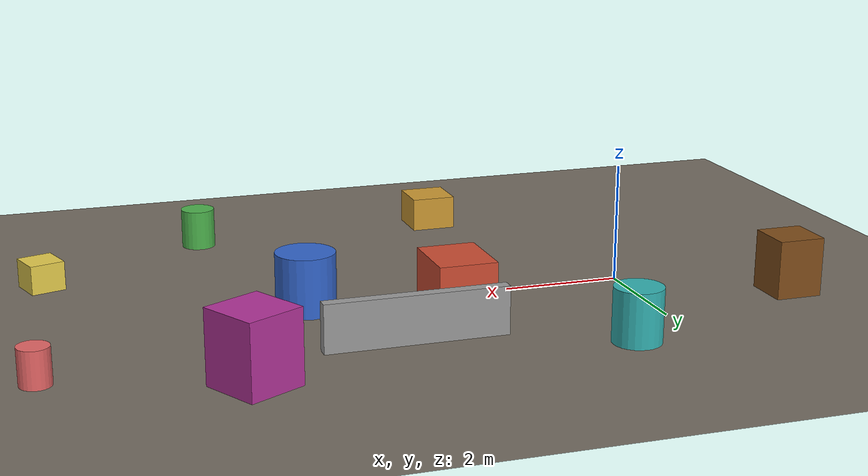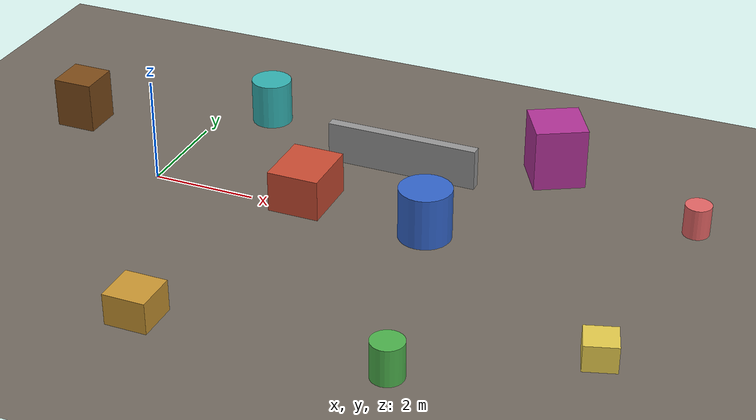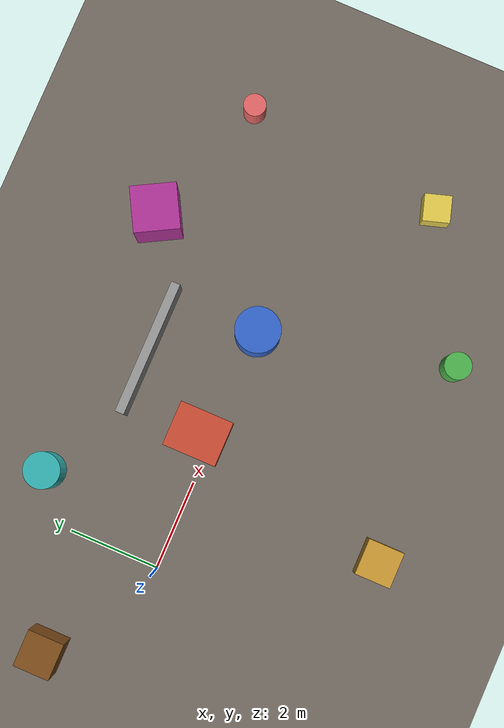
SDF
<?xml version="1.0" ?>
<sdf version="1.9">
  <world name="obstacles">
    <physics name="1ms" type="ignored">
      <max_step_size>0.001</max_step_size>
      <real_time_factor>1.0</real_time_factor>
    </physics>
    <plugin filename="gz-sim-physics-system" name="gz::sim::systems::Physics"/>
    <plugin filename="gz-sim-user-commands-system" name="gz::sim::systems::UserCommands"/>
    <plugin filename="gz-sim-scene-broadcaster-system" name="gz::sim::systems::SceneBroadcaster"/>
    <plugin filename="gz-sim-sensors-system" name="gz::sim::systems::Sensors">
      <render_engine>ogre2</render_engine>
    </plugin>
    <plugin filename="gz-sim-contact-system" name="gz::sim::systems::Contact"/>
    <plugin filename="gz-sim-imu-system" name="gz::sim::systems::Imu"/>

    <gravity>0 0 -9.8</gravity>
    <scene>
      <ambient>0.6 0.6 0.6 1</ambient>
      <background>0.7 0.8 0.9 1</background>
      <shadows>false</shadows>
    </scene>

    <light type="directional" name="sun">
      <cast_shadows>false</cast_shadows>
      <pose>0 0 10 0 0 0</pose>
      <diffuse>0.9 0.9 0.9 1</diffuse>
      <specular>0.2 0.2 0.2 1</specular>
      <direction>-0.5 0.1 -0.9</direction>
    </light>

    <model name="ground_plane">
      <static>true</static>
      <link name="link">
        <collision name="collision">
          <geometry><plane><normal>0 0 1</normal><size>30 30</size></plane></geometry>
          <surface><friction><ode><mu>1.0</mu><mu2>1.0</mu2></ode></friction></surface>
        </collision>
        <visual name="visual">
          <geometry><plane><normal>0 0 1</normal><size>30 30</size></plane></geometry>
          <material><ambient>0.45 0.42 0.38 1</ambient><diffuse>0.45 0.42 0.38 1</diffuse><specular>0.05 0.05 0.05 1</specular></material>
        </visual>
      </link>
    </model>

    <model name="box_line_1">
      <static>true</static>
      <pose>3.0 0.3 0.4 0 0 0.0</pose>
      <link name="link">
        <collision name="collision"><geometry><box><size>1.0 1.2 0.8</size></box></geometry></collision>
        <visual name="visual"><geometry><box><size>1.0 1.2 0.8</size></box></geometry>
          <material><ambient>0.8 0.3 0.2 1</ambient><diffuse>0.8 0.3 0.2 1</diffuse><specular>0.1 0.1 0.1 1</specular></material>
        </visual>
      </link>
    </model>
    <model name="cyl_line_2">
      <static>true</static>
      <pose>5.5 0.0 0.5 0 0 0.0</pose>
      <link name="link">
        <collision name="collision"><geometry><cylinder><radius>0.5</radius><length>1.0</length></cylinder></geometry></collision>
        <visual name="visual"><geometry><cylinder><radius>0.5</radius><length>1.0</length></cylinder></geometry>
          <material><ambient>0.2 0.4 0.8 1</ambient><diffuse>0.2 0.4 0.8 1</diffuse><specular>0.1 0.1 0.1 1</specular></material>
        </visual>
      </link>
    </model>
    <model name="wall_north">
      <static>true</static>
      <pose>4.25 2.0 0.4 0 0 0.0</pose>
      <link name="link">
        <collision name="collision"><geometry><box><size>3.0 0.2 0.8</size></box></geometry></collision>
        <visual name="visual"><geometry><box><size>3.0 0.2 0.8</size></box></geometry>
          <material><ambient>0.6 0.6 0.6 1</ambient><diffuse>0.6 0.6 0.6 1</diffuse><specular>0.1 0.1 0.1 1</specular></material>
        </visual>
      </link>
    </model>
    <model name="box_sw">
      <static>true</static>
      <pose>2.0 -4.3 0.3 0 0 0.0</pose>
      <link name="link">
        <collision name="collision"><geometry><box><size>0.8 0.8 0.6</size></box></geometry></collision>
        <visual name="visual"><geometry><box><size>0.8 0.8 0.6</size></box></geometry>
          <material><ambient>0.8 0.6 0.2 1</ambient><diffuse>0.8 0.6 0.2 1</diffuse><specular>0.1 0.1 0.1 1</specular></material>
        </visual>
      </link>
    </model>
    <model name="cyl_se">
      <static>true</static>
      <pose>6.5 -4.2 0.35 0 0 0.0</pose>
      <link name="link">
        <collision name="collision"><geometry><cylinder><radius>0.3</radius><length>0.7</length></cylinder></geometry></collision>
        <visual name="visual"><geometry><cylinder><radius>0.3</radius><length>0.7</length></cylinder></geometry>
          <material><ambient>0.3 0.7 0.3 1</ambient><diffuse>0.3 0.7 0.3 1</diffuse><specular>0.1 0.1 0.1 1</specular></material>
        </visual>
      </link>
    </model>
    <model name="box_ne">
      <static>true</static>
      <pose>7.0 3.0 0.6 0 0 0.5</pose>
      <link name="link">
        <collision name="collision"><geometry><box><size>1.0 1.0 1.2</size></box></geometry></collision>
        <visual name="visual"><geometry><box><size>1.0 1.0 1.2</size></box></geometry>
          <material><ambient>0.7 0.2 0.6 1</ambient><diffuse>0.7 0.2 0.6 1</diffuse><specular>0.1 0.1 0.1 1</specular></material>
        </visual>
      </link>
    </model>
    <model name="cyl_nw">
      <static>true</static>
      <pose>1.0 3.0 0.45 0 0 0.0</pose>
      <link name="link">
        <collision name="collision"><geometry><cylinder><radius>0.4</radius><length>0.9</length></cylinder></geometry></collision>
        <visual name="visual"><geometry><cylinder><radius>0.4</radius><length>0.9</length></cylinder></geometry>
          <material><ambient>0.2 0.7 0.7 1</ambient><diffuse>0.2 0.7 0.7 1</diffuse><specular>0.1 0.1 0.1 1</specular></material>
        </visual>
      </link>
    </model>
    <model name="box_far_se">
      <static>true</static>
      <pose>9.5 -2.5 0.25 0 0 0.3</pose>
      <link name="link">
        <collision name="collision"><geometry><box><size>0.6 0.6 0.5</size></box></geometry></collision>
        <visual name="visual"><geometry><box><size>0.6 0.6 0.5</size></box></geometry>
          <material><ambient>0.9 0.8 0.3 1</ambient><diffuse>0.9 0.8 0.3 1</diffuse><specular>0.1 0.1 0.1 1</specular></material>
        </visual>
      </link>
    </model>
    <model name="box_behind">
      <static>true</static>
      <pose>-2.5 1.5 0.5 0 0 0.0</pose>
      <link name="link">
        <collision name="collision"><geometry><box><size>0.8 0.8 1.0</size></box></geometry></collision>
        <visual name="visual"><geometry><box><size>0.8 0.8 1.0</size></box></geometry>
          <material><ambient>0.5 0.3 0.1 1</ambient><diffuse>0.5 0.3 0.1 1</diffuse><specular>0.1 0.1 0.1 1</specular></material>
        </visual>
      </link>
    </model>
    <model name="cyl_far_ne">
      <static>true</static>
      <pose>10.0 2.0 0.3 0 0 0.0</pose>
      <link name="link">
        <collision name="collision"><geometry><cylinder><radius>0.25</radius><length>0.6</length></cylinder></geometry></collision>
        <visual name="visual"><geometry><cylinder><radius>0.25</radius><length>0.6</length></cylinder></geometry>
          <material><ambient>0.9 0.4 0.4 1</ambient><diffuse>0.9 0.4 0.4 1</diffuse><specular>0.1 0.1 0.1 1</specular></material>
        </visual>
      </link>
    </model>
  </world>
</sdf>
